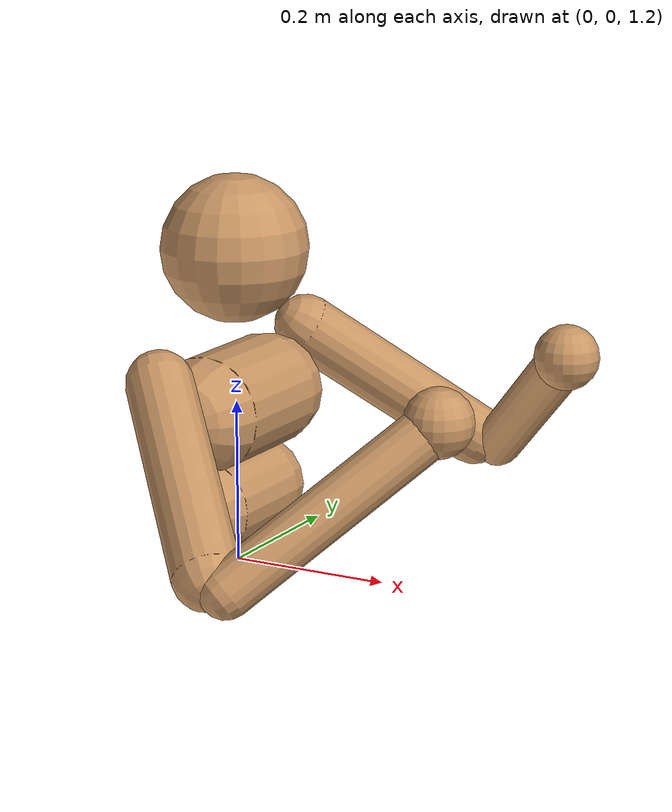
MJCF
<mujoco model="humanoid">
    <compiler angle="degree" inertiafromgeom="true"/>
    <default>
        <joint armature="1" damping="1" limited="true"/>
        <geom conaffinity="1" condim="1" contype="1" margin="0.001" material="geom" rgba="0.8 0.6 .4 1"/>
        <motor ctrllimited="true" ctrlrange="-.4 .4"/>
    </default>
    <option integrator="RK4" iterations="50" solver="PGS" timestep="0.003">
    </option>
    <size nkey="5" nuser_geom="1"/>
    <visual>
        <map fogend="5" fogstart="3"/>
    </visual>
    <asset>
        <texture builtin="gradient" height="100" rgb1=".4 .5 .6" rgb2="0 0 0" type="skybox" width="100"/>
        <texture builtin="flat" height="1278" mark="cross" markrgb="1 1 1" name="texgeom" random="0.01" rgb1="0.8 0.6 0.4" rgb2="0.8 0.6 0.4" type="cube" width="127"/>
        <texture builtin="checker" height="100" name="texplane" rgb1="0 0 0" rgb2="0.8 0.8 0.8" type="2d" width="100"/>
        <material name="MatPlane" reflectance="0.5" shininess="1" specular="1" texrepeat="60 60" texture="texplane"/>
        <material name="geom" texture="texgeom" texuniform="true"/>
    </asset>
    <worldbody>
        <light cutoff="100" diffuse="1 1 1" dir="-0 0 -1.3" directional="true" exponent="1" pos="0 0 1.3" specular=".1 .1 .1"/>
        <geom condim="3" friction="1 .1 .1" material="MatPlane" name="floor" pos="0 0 0" rgba="0.8 0.9 0.8 1" size="20 20 0.125" type="plane"/>
        <body name="torso" pos="0 0 1.4">
            <joint armature="0" damping="0" limited="false" name="root" pos="0 0 0" stiffness="0" type="free"/>
            <geom fromto="0 -.07 0 0 .07 0" name="torso1" size="0.07" type="capsule"/>
            <geom name="head" pos="0 0 .19" size=".09" type="sphere" user="258"/>
            <geom fromto="-.01 -.06 -.12 -.01 .06 -.12" name="uwaist" size="0.06" type="capsule"/>
            <body name="right_upper_arm" pos="0 -0.17 0.06">
                <joint armature="0.0068" axis="2 1 1" name="right_shoulder1" pos="0 0 0" range="-85 60" stiffness="1" type="hinge"/>
                <joint armature="0.0051" axis="0 -1 1" name="right_shoulder2" pos="0 0 0" range="-85 60" stiffness="1" type="hinge"/>
                <geom fromto="0 0 0 .16 -.16 -.16" name="right_uarm1" size="0.04 0.16" type="capsule"/>
                <body name="right_lower_arm" pos=".18 -.18 -.18">
                    <joint armature="0.0028" axis="0 -1 1" name="right_elbow" pos="0 0 0" range="-90 50" stiffness="0" type="hinge"/>
                    <geom fromto="0.01 0.01 0.01 .17 .17 .17" name="right_larm" size="0.031" type="capsule"/>
                    <geom name="right_hand" pos=".18 .18 .18" size="0.04" type="sphere"/>
                    <camera pos="0 0 0"/>
                </body>
            </body>
            <body name="left_upper_arm" pos="0 0.17 0.06">
                <joint armature="0.0068" axis="2 -1 1" name="left_shoulder1" pos="0 0 0" range="-60 85" stiffness="1" type="hinge"/>
                <joint armature="0.0051" axis="0 1 1" name="left_shoulder2" pos="0 0 0" range="-60 85" stiffness="1" type="hinge"/>
                <geom fromto="0 0 0 .16 .16 -.16" name="left_uarm1" size="0.04 0.16" type="capsule"/>
                <body name="left_lower_arm" pos=".18 .18 -.18">
                    <joint armature="0.0028" axis="0 -1 -1" name="left_elbow" pos="0 0 0" range="-90 50" stiffness="0" type="hinge"/>
                    <geom fromto="0.01 -0.01 0.01 .17 -.17 .17" name="left_larm" size="0.031" type="capsule"/>
                    <geom name="left_hand" pos=".18 -.18 .18" size="0.04" type="sphere"/>
                </body>
            </body>
        </body>
    </worldbody>
    <tendon>
        <fixed name="left_hipknee">
            <joint coef="-1" joint="left_hip_y"/>
            <joint coef="1" joint="left_knee"/>
        </fixed>
        <fixed name="right_hipknee">
            <joint coef="-1" joint="right_hip_y"/>
            <joint coef="1" joint="right_knee"/>
        </fixed>
    </tendon>

    <actuator>
        <motor gear="100" joint="abdomen_y" name="abdomen_y"/>
        <motor gear="100" joint="abdomen_z" name="abdomen_z"/>
        <motor gear="100" joint="abdomen_x" name="abdomen_x"/>
        <motor gear="100" joint="right_hip_x" name="right_hip_x"/>
        <motor gear="100" joint="right_hip_z" name="right_hip_z"/>
        <motor gear="300" joint="right_hip_y" name="right_hip_y"/>
        <motor gear="200" joint="right_knee" name="right_knee"/>
        <motor gear="100" joint="left_hip_x" name="left_hip_x"/>
        <motor gear="100" joint="left_hip_z" name="left_hip_z"/>
        <motor gear="300" joint="left_hip_y" name="left_hip_y"/>
        <motor gear="200" joint="left_knee" name="left_knee"/>
        <motor gear="25" joint="right_shoulder1" name="right_shoulder1"/>
        <motor gear="25" joint="right_shoulder2" name="right_shoulder2"/>
        <motor gear="25" joint="right_elbow" name="right_elbow"/>
        <motor gear="25" joint="left_shoulder1" name="left_shoulder1"/>
        <motor gear="25" joint="left_shoulder2" name="left_shoulder2"/>
        <motor gear="25" joint="left_elbow" name="left_elbow"/>
    </actuator>
</mujoco>
